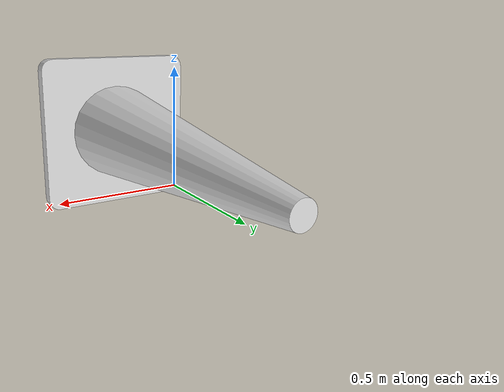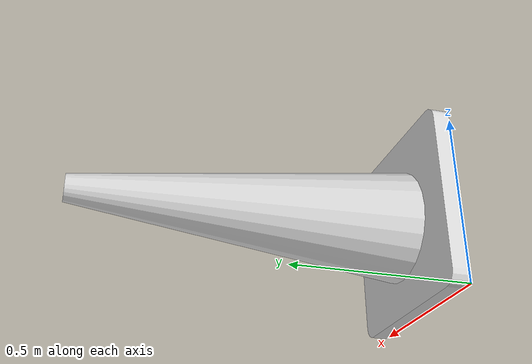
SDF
<?xml version="1.0" encoding="utf-8"?>
<sdf version='1.7'>
  <model name='newtarget'>
    <static>true</static>
    <link name='base_link'>
      <collision name='base_link_collision'>
        <geometry>
          <mesh>
            <scale>0.001 0.001 0.001</scale>
            <uri>model://newtarget/meshes/newtarget.STL</uri>
          </mesh>
        </geometry>
      </collision>
      <visual name='base_link_visual'>
        <geometry>
          <mesh>
            <scale>0.001 0.001 0.001</scale>
            <uri>model://newtarget/meshes/newtarget.dae</uri>
          </mesh>
        </geometry>
        <material>
          <script>
            <uri>model://newtarget/materials/scripts</uri>
            <uri>model://newtarget/materials/textures</uri>
            <name>newtarget</name>
          </script>
        </material>
      </visual>
    </link>
  </model>
</sdf>
